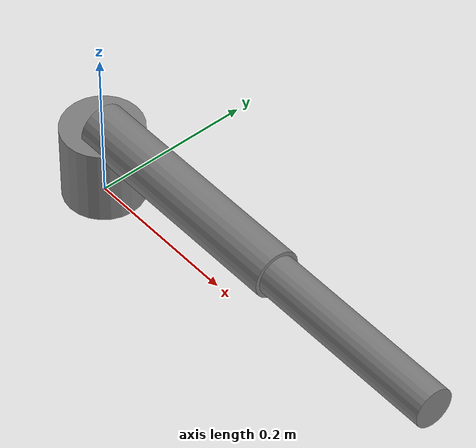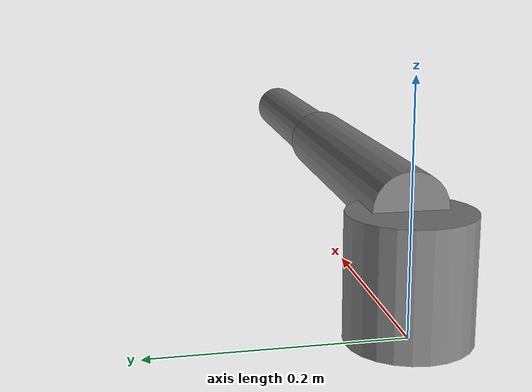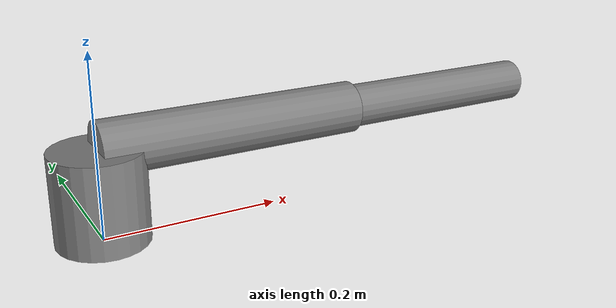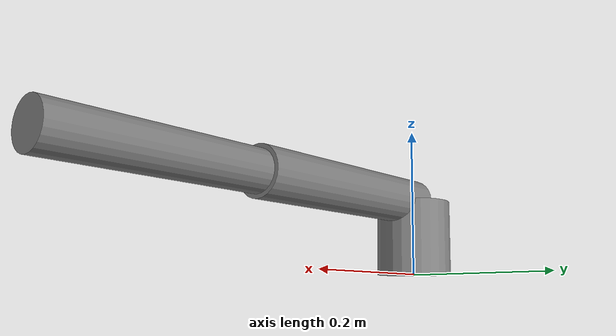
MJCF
<mujoco model="two_link_arm">
  <compiler angle="radian"/>

  <worldbody>
    <body name="base_link">
      <inertial pos="0 0 0.05" mass="2" diaginertia="0.0029167 0.0029167 0.0025"/>
      <geom size="0.05 0.05" pos="0 0 0.05" type="cylinder" contype="0" conaffinity="0" group="1" density="0"/>
      <body name="link1" pos="0 0 0.1">
        <inertial pos="0.15 0 0" quat="0.499999 0.500001 0.500001 0.499999" mass="1" diaginertia="0.007725 0.007725 0.00045"/>
        <joint name="shoulder" range="-1.5708 1.5708" actuatorfrcrange="-40 40" damping="0.05" axis="0 1 0"/>
        <geom size="0.03 0.15" pos="0.15 0 0" quat="0.707105 0 0.707108 0" type="cylinder" contype="0" conaffinity="0" group="1" density="0"/>
        <geom size="0.03 0.15" pos="0.15 0 0" quat="0.707105 0 0.707108 0" type="cylinder"/>
        <body name="link2" pos="0.3 0 0">
          <inertial pos="0.125 0 0" quat="0.499999 0.500001 0.500001 0.499999" mass="0.6" diaginertia="0.0032188 0.0032188 0.0001875"/>
          <joint name="elbow" range="-2.3562 2.3562" actuatorfrcrange="-20 20" damping="0.05" axis="0 1 0"/>
          <geom size="0.025 0.125" pos="0.125 0 0" quat="0.707105 0 0.707108 0" type="cylinder" contype="0" conaffinity="0" group="1" density="0"/>
          <geom size="0.025 0.125" pos="0.125 0 0" quat="0.707105 0 0.707108 0" type="cylinder"/>
          <body name="tool0" pos="0.25 0 0"/>
        </body>
      </body>
    </body>
  </worldbody>
</mujoco>
